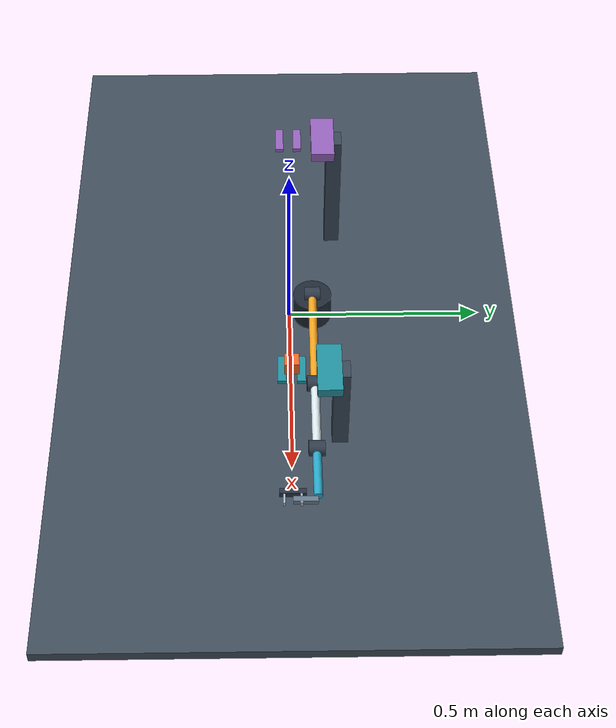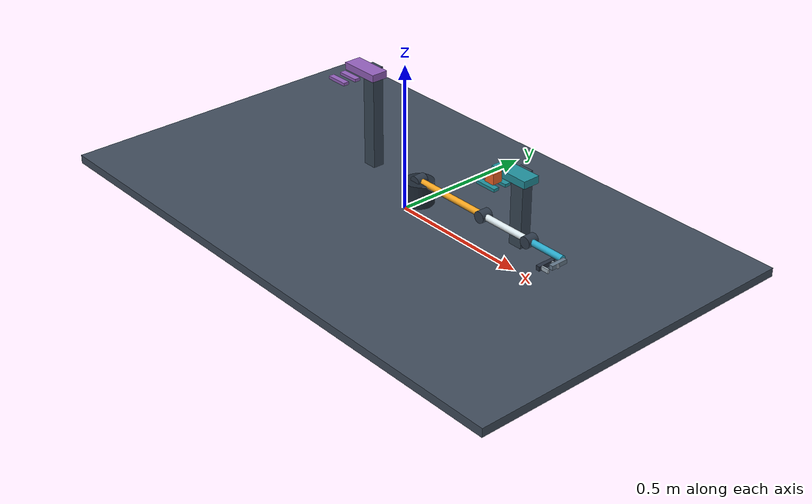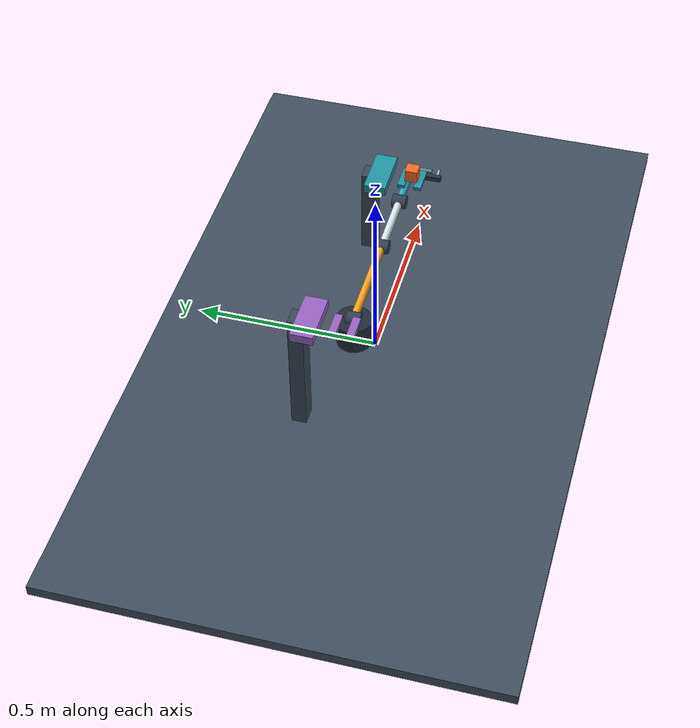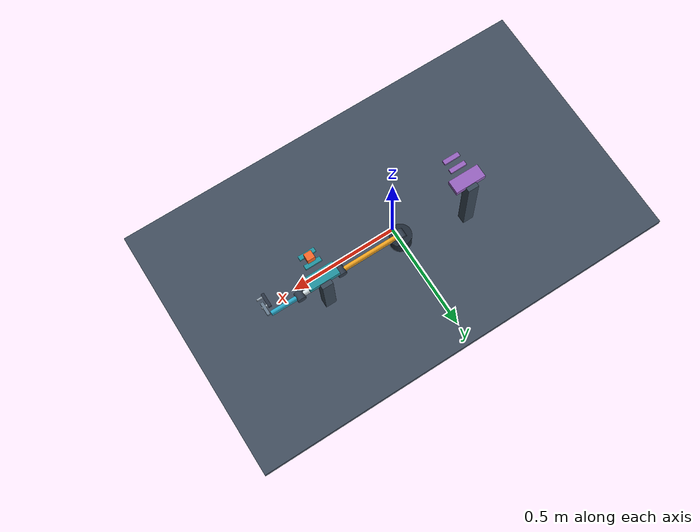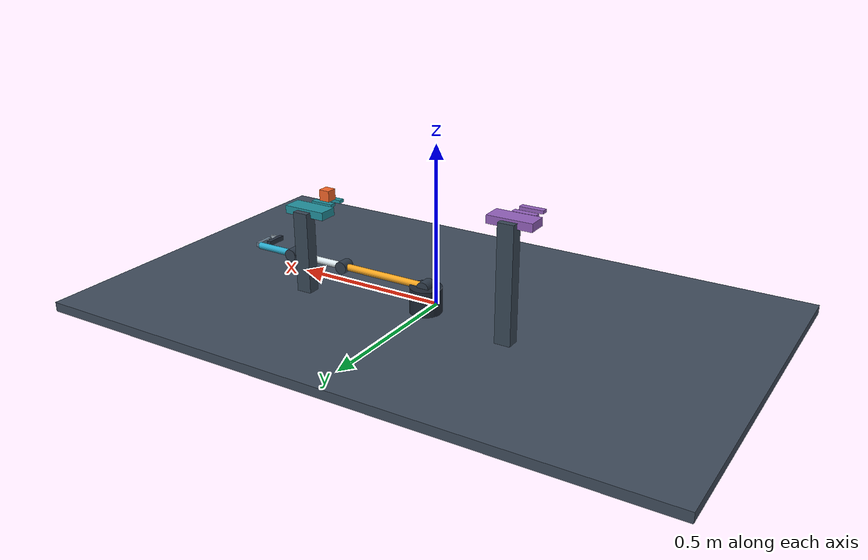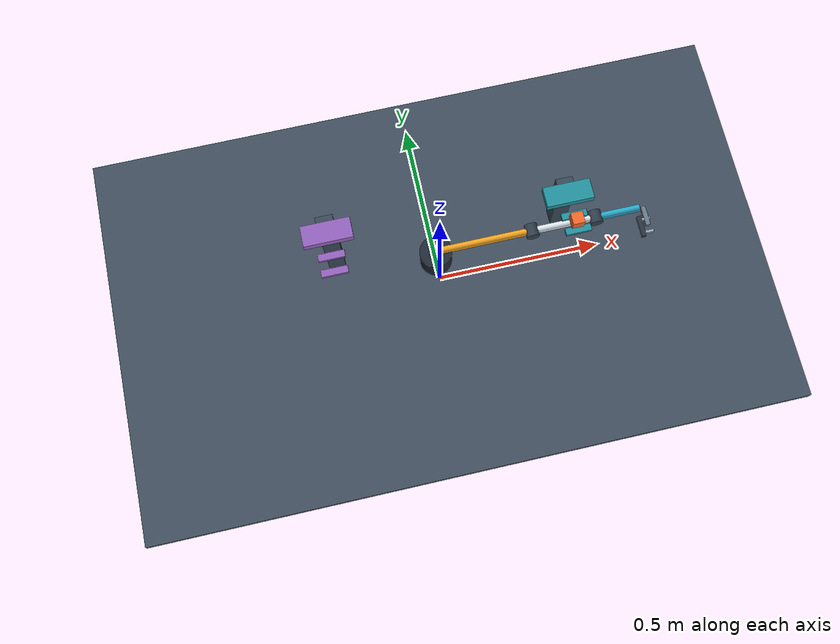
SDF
<?xml version="1.0"?>
<!-- Planar 3R arm: one brief length unit = 0.1 m; math (x,y) maps to world (0.1*x,0,0.08+0.1*y). Grasp uses an explicit detachable constraint. -->
<sdf version="1.9">
  <world name="workcell">
    <physics name="physics" type="ignored">
      <max_step_size>.001</max_step_size>
      <real_time_factor>1</real_time_factor>
    </physics>
    <gravity>0 0 -9.81</gravity>
    <plugin filename="gz-sim-physics-system" name="gz::sim::systems::Physics"/>
    <plugin filename="gz-sim-user-commands-system" name="gz::sim::systems::UserCommands"/>
    <plugin filename="gz-sim-scene-broadcaster-system" name="gz::sim::systems::SceneBroadcaster"/>
    <scene>
      <ambient>.5 .5 .5 1</ambient>
      <background>.10 .14 .20 1</background>
      <shadows>true</shadows>
    </scene>
    <light name="key" type="directional">
      <pose>0 0 3 0 0 0</pose>
      <direction>-.4 .4 -1</direction>
      <diffuse>.9 .9 .9 1</diffuse>
      <specular>.3 .3 .3 1</specular>
      <cast_shadows>true</cast_shadows>
    </light>
    <model name="floor">
      <static>true</static>
      <link name="floor">
        <visual name="floor">
          <pose>0 0 -.015 0 0 0</pose>
          <geometry>
            <box>
              <size>2.0 1.2 .03</size>
            </box>
          </geometry>
          <material>
            <ambient>0.25 0.30 0.36 1</ambient>
            <diffuse>0.25 0.30 0.36 1</diffuse>
            <specular>0.25 0.25 0.25 1</specular>
          </material>
        </visual>
        <collision name="floor_collision">
          <pose>0 0 -.015 0 0 0</pose>
          <geometry>
            <box>
              <size>2.0 1.2 .03</size>
            </box>
          </geometry>
        </collision>
      </link>
    </model>
    <model name="pick_station">
      <static>true</static>
      <link name="frame">
        <visual name="column">
          <pose>0.4 .12 0.13 0 0 0</pose>
          <geometry>
            <box>
              <size>.05 .04 0.26</size>
            </box>
          </geometry>
          <material>
            <ambient>0.22 0.28 0.34 1</ambient>
            <diffuse>0.22 0.28 0.34 1</diffuse>
            <specular>0.25 0.25 0.25 1</specular>
          </material>
        </visual>
        <visual name="backboard">
          <pose>0.4 .09 0.255 0 0 0</pose>
          <geometry>
            <box>
              <size>.14 .06 .025</size>
            </box>
          </geometry>
          <material>
            <ambient>0.13 0.57 0.62 1</ambient>
            <diffuse>0.13 0.57 0.62 1</diffuse>
            <specular>0.25 0.25 0.25 1</specular>
          </material>
        </visual>
        <visual name="rail-1">
          <pose>0.4 -0.023 0.2575 0 0 0</pose>
          <geometry>
            <box>
              <size>.075 .020 .01</size>
            </box>
          </geometry>
          <material>
            <ambient>0.13 0.57 0.62 1</ambient>
            <diffuse>0.13 0.57 0.62 1</diffuse>
            <specular>0.25 0.25 0.25 1</specular>
          </material>
        </visual>
        <collision name="support-1_collision">
          <pose>0.4 -0.023 0.2575 0 0 0</pose>
          <geometry>
            <box>
              <size>.075 .020 .01</size>
            </box>
          </geometry>
        </collision>
        <visual name="rail1">
          <pose>0.4 0.023 0.2575 0 0 0</pose>
          <geometry>
            <box>
              <size>.075 .020 .01</size>
            </box>
          </geometry>
          <material>
            <ambient>0.13 0.57 0.62 1</ambient>
            <diffuse>0.13 0.57 0.62 1</diffuse>
            <specular>0.25 0.25 0.25 1</specular>
          </material>
        </visual>
        <collision name="support1_collision">
          <pose>0.4 0.023 0.2575 0 0 0</pose>
          <geometry>
            <box>
              <size>.075 .020 .01</size>
            </box>
          </geometry>
        </collision>
      </link>
    </model>
    <model name="place_station">
      <static>true</static>
      <link name="frame">
        <visual name="column">
          <pose>-0.3 .12 0.18 0 0 0</pose>
          <geometry>
            <box>
              <size>.05 .04 0.36</size>
            </box>
          </geometry>
          <material>
            <ambient>0.22 0.28 0.34 1</ambient>
            <diffuse>0.22 0.28 0.34 1</diffuse>
            <specular>0.25 0.25 0.25 1</specular>
          </material>
        </visual>
        <visual name="backboard">
          <pose>-0.3 .09 0.355 0 0 0</pose>
          <geometry>
            <box>
              <size>.14 .06 .025</size>
            </box>
          </geometry>
          <material>
            <ambient>0.58 0.38 0.74 1</ambient>
            <diffuse>0.58 0.38 0.74 1</diffuse>
            <specular>0.25 0.25 0.25 1</specular>
          </material>
        </visual>
        <visual name="rail-1">
          <pose>-0.3 -0.023 0.3525 0 0 0</pose>
          <geometry>
            <box>
              <size>.075 .020 .01</size>
            </box>
          </geometry>
          <material>
            <ambient>0.58 0.38 0.74 1</ambient>
            <diffuse>0.58 0.38 0.74 1</diffuse>
            <specular>0.25 0.25 0.25 1</specular>
          </material>
        </visual>
        <collision name="support-1_collision">
          <pose>-0.3 -0.023 0.3525 0 0 0</pose>
          <geometry>
            <box>
              <size>.075 .020 .01</size>
            </box>
          </geometry>
        </collision>
        <visual name="rail1">
          <pose>-0.3 0.023 0.3525 0 0 0</pose>
          <geometry>
            <box>
              <size>.075 .020 .01</size>
            </box>
          </geometry>
          <material>
            <ambient>0.58 0.38 0.74 1</ambient>
            <diffuse>0.58 0.38 0.74 1</diffuse>
            <specular>0.25 0.25 0.25 1</specular>
          </material>
        </visual>
        <collision name="support1_collision">
          <pose>-0.3 0.023 0.3525 0 0 0</pose>
          <geometry>
            <box>
              <size>.075 .020 .01</size>
            </box>
          </geometry>
        </collision>
      </link>
    </model>
    <model name="payload">
      <pose>.4 0 .28 0 0 0</pose>
      <link name="body">
        <inertial>
          <mass>.03</mass>
          <inertia>
            <ixx>.000006125</ixx>
            <iyy>.000006125</iyy>
            <izz>.000006125</izz>
          </inertia>
        </inertial>
        <visual name="cube">
          <pose>0 0 0 0 0 0</pose>
          <geometry>
            <box>
              <size>.035 .035 .035</size>
            </box>
          </geometry>
          <material>
            <ambient>0.96 0.40 0.16 1</ambient>
            <diffuse>0.96 0.40 0.16 1</diffuse>
            <specular>0.25 0.25 0.25 1</specular>
          </material>
        </visual>
        <collision name="cube_collision">
          <pose>0 0 0 0 0 0</pose>
          <geometry>
            <box>
              <size>.035 .035 .035</size>
            </box>
          </geometry>
        </collision>
      </link>
      <plugin filename="gz-sim-pose-publisher-system" name="gz::sim::systems::PosePublisher">
        <publish_model_pose>true</publish_model_pose>
        <publish_link_pose>false</publish_link_pose>
        <use_pose_vector_msg>true</use_pose_vector_msg>
        <update_frequency>50</update_frequency>
      </plugin>
    </model>
    <model name="arm">
      <!-- A fixed lateral tool bracket reaches the payload plane, while the
           links run 6 cm behind it. All axes remain parallel; math X/Y and
           link lengths are unchanged. -->
      <pose>0 .06 0.08 0 0 0</pose>
      <self_collide>false</self_collide>
      <link name="base">
        <inertial>
          <mass>2</mass>
          <inertia>
            <ixx>.01</ixx>
            <iyy>.01</iyy>
            <izz>.01</izz>
          </inertia>
        </inertial>
        <visual name="pedestal">
          <pose>0 0 -0.04 0 0 0</pose>
          <geometry>
            <cylinder>
              <radius>0.05</radius>
              <length>0.08</length>
            </cylinder>
          </geometry>
          <material>
            <ambient>0.12 0.16 0.21 1</ambient>
            <diffuse>0.12 0.16 0.21 1</diffuse>
            <specular>0.25 0.25 0.25 1</specular>
          </material>
        </visual>
        <collision name="base_collision">
          <pose>0 0 -0.04 0 0 0</pose>
          <geometry>
            <cylinder>
              <radius>0.05</radius>
              <length>0.08</length>
            </cylinder>
          </geometry>
        </collision>
      </link>
      <joint name="fixed_base" type="fixed">
        <parent>world</parent>
        <child>base</child>
      </joint>
      <link name="link_1">
        <pose relative_to="base">0 0 0 0 0 0</pose>
        <inertial>
          <pose>0.15 0 0 0 0 0</pose>
          <mass>0.6</mass>
          <inertia>
            <ixx>0.00004</ixx>
            <iyy>0.00452</iyy>
            <izz>0.00452</izz>
          </inertia>
        </inertial>
        <visual name="beam">
          <pose>0.15 0 0 0 1.57079632679 0</pose>
          <geometry>
            <cylinder>
              <radius>0.011</radius>
              <length>0.27799999999999997</length>
            </cylinder>
          </geometry>
          <material>
            <ambient>0.95 0.64 0.12 1</ambient>
            <diffuse>0.95 0.64 0.12 1</diffuse>
            <specular>0.25 0.25 0.25 1</specular>
          </material>
        </visual>
        <visual name="hub">
          <pose>0 0 0 1.57079632679 0 0</pose>
          <geometry>
            <cylinder>
              <radius>0.02</radius>
              <length>0.04</length>
            </cylinder>
          </geometry>
          <material>
            <ambient>0.19 0.24 0.30 1</ambient>
            <diffuse>0.19 0.24 0.30 1</diffuse>
            <specular>0.25 0.25 0.25 1</specular>
          </material>
        </visual>
        <collision name="beam_collision">
          <pose>0.15 0 0 0 1.57079632679 0</pose>
          <geometry>
            <cylinder>
              <radius>0.008</radius>
              <length>0.27499999999999997</length>
            </cylinder>
          </geometry>
        </collision>
      </link>
      <joint name="joint_1" type="revolute">
        <parent>base</parent>
        <child>link_1</child>
        <axis>
          <xyz>0 -1 0</xyz>
          <limit>
            <lower>0</lower>
            <upper>3.141592653589793</upper>
            <effort>12</effort>
            <velocity>1.5</velocity>
          </limit>
          <dynamics>
            <damping>0.08</damping>
          </dynamics>
        </axis>
      </joint>
      <plugin filename="gz-sim-joint-position-controller-system" name="gz::sim::systems::JointPositionController">
        <joint_name>joint_1</joint_name>
        <topic>/arm/joint_1/command</topic>
        <p_gain>120</p_gain>
        <i_gain>100</i_gain>
        <d_gain>3</d_gain>
        <i_max>8</i_max>
        <i_min>-8</i_min>
        <cmd_max>12</cmd_max>
        <cmd_min>-12</cmd_min>
        <initial_position>0.5235987755982988</initial_position>
      </plugin>
      <link name="link_2">
        <pose relative_to="link_1">0.3 0 0 0 0 0</pose>
        <inertial>
          <pose>0.1 0 0 0 0 0</pose>
          <mass>0.4</mass>
          <inertia>
            <ixx>0.00002666666666666667</ixx>
            <iyy>0.001346666666666667</iyy>
            <izz>0.001346666666666667</izz>
          </inertia>
        </inertial>
        <visual name="beam">
          <pose>0.1 0 0 0 1.57079632679 0</pose>
          <geometry>
            <cylinder>
              <radius>0.011</radius>
              <length>0.17800000000000002</length>
            </cylinder>
          </geometry>
          <material>
            <ambient>0.86 0.91 0.93 1</ambient>
            <diffuse>0.86 0.91 0.93 1</diffuse>
            <specular>0.25 0.25 0.25 1</specular>
          </material>
        </visual>
        <visual name="hub">
          <pose>0 0 0 1.57079632679 0 0</pose>
          <geometry>
            <cylinder>
              <radius>0.02</radius>
              <length>0.04</length>
            </cylinder>
          </geometry>
          <material>
            <ambient>0.19 0.24 0.30 1</ambient>
            <diffuse>0.19 0.24 0.30 1</diffuse>
            <specular>0.25 0.25 0.25 1</specular>
          </material>
        </visual>
        <collision name="beam_collision">
          <pose>0.1 0 0 0 1.57079632679 0</pose>
          <geometry>
            <cylinder>
              <radius>0.008</radius>
              <length>0.17500000000000002</length>
            </cylinder>
          </geometry>
        </collision>
      </link>
      <joint name="joint_2" type="revolute">
        <parent>link_1</parent>
        <child>link_2</child>
        <axis>
          <xyz>0 -1 0</xyz>
          <limit>
            <lower>-2.09439510239</lower>
            <upper>2.09439510239</upper>
            <effort>12</effort>
            <velocity>1.5</velocity>
          </limit>
          <dynamics>
            <damping>0.08</damping>
          </dynamics>
        </axis>
      </joint>
      <plugin filename="gz-sim-joint-position-controller-system" name="gz::sim::systems::JointPositionController">
        <joint_name>joint_2</joint_name>
        <topic>/arm/joint_2/command</topic>
        <p_gain>50</p_gain>
        <i_gain>25</i_gain>
        <d_gain>.7</d_gain>
        <i_max>3</i_max>
        <i_min>-3</i_min>
        <cmd_max>12</cmd_max>
        <cmd_min>-12</cmd_min>
        <initial_position>-0.3490658503988659</initial_position>
      </plugin>
      <link name="link_3">
        <pose relative_to="link_2">0.2 0 0 0 0 0</pose>
        <inertial>
          <pose>0.075 0 0 0 0 0</pose>
          <mass>0.2</mass>
          <inertia>
            <ixx>0.000013333333333333335</ixx>
            <iyy>0.00038166666666666666</iyy>
            <izz>0.00038166666666666666</izz>
          </inertia>
        </inertial>
        <visual name="beam">
          <pose>0.075 0 0 0 1.57079632679 0</pose>
          <geometry>
            <cylinder>
              <radius>0.011</radius>
              <length>0.128</length>
            </cylinder>
          </geometry>
          <material>
            <ambient>0.16 0.66 0.79 1</ambient>
            <diffuse>0.16 0.66 0.79 1</diffuse>
            <specular>0.25 0.25 0.25 1</specular>
          </material>
        </visual>
        <visual name="hub">
          <pose>0 0 0 1.57079632679 0 0</pose>
          <geometry>
            <cylinder>
              <radius>0.02</radius>
              <length>0.04</length>
            </cylinder>
          </geometry>
          <material>
            <ambient>0.19 0.24 0.30 1</ambient>
            <diffuse>0.19 0.24 0.30 1</diffuse>
            <specular>0.25 0.25 0.25 1</specular>
          </material>
        </visual>
        <collision name="beam_collision">
          <pose>0.075 0 0 0 1.57079632679 0</pose>
          <geometry>
            <cylinder>
              <radius>0.008</radius>
              <length>0.125</length>
            </cylinder>
          </geometry>
        </collision>
      </link>
      <joint name="joint_3" type="revolute">
        <parent>link_2</parent>
        <child>link_3</child>
        <axis>
          <xyz>0 -1 0</xyz>
          <limit>
            <lower>-2.09439510239</lower>
            <upper>2.09439510239</upper>
            <effort>12</effort>
            <velocity>1.5</velocity>
          </limit>
          <dynamics>
            <damping>0.08</damping>
          </dynamics>
        </axis>
      </joint>
      <plugin filename="gz-sim-joint-position-controller-system" name="gz::sim::systems::JointPositionController">
        <joint_name>joint_3</joint_name>
        <topic>/arm/joint_3/command</topic>
        <p_gain>12</p_gain>
        <i_gain>5</i_gain>
        <d_gain>.1</d_gain>
        <i_max>3</i_max>
        <i_min>-3</i_min>
        <cmd_max>12</cmd_max>
        <cmd_min>-12</cmd_min>
        <initial_position>-0.17453292519943295</initial_position>
      </plugin>
      <link name="tool">
        <pose relative_to="link_3">.15 -.06 0 0 0 0</pose>
        <inertial>
          <pose>0.0005 0 0 0 0 0</pose>
          <mass>0.02</mass>
          <inertia>
            <ixx>0.0000013333333333333336</ixx>
            <iyy>6.683333333333334e-7</iyy>
            <izz>6.683333333333334e-7</izz>
          </inertia>
        </inertial>
        <visual name="lateral_bracket">
          <pose>0 .03 0 0 0 0</pose>
          <geometry><box><size>.014 .06 .014</size></box></geometry>
          <material><ambient>.4 .48 .55 1</ambient><diffuse>.4 .48 .55 1</diffuse></material>
        </visual>
        <visual name="palm">
          <pose>-.022 0 0 0 0 0</pose>
          <geometry>
            <box>
              <size>.014 .065 .015</size>
            </box>
          </geometry>
          <material>
            <ambient>0.16 0.20 0.26 1</ambient>
            <diffuse>0.16 0.20 0.26 1</diffuse>
            <specular>0.25 0.25 0.25 1</specular>
          </material>
        </visual>
      </link>
      <joint name="tool_mount" type="fixed">
        <parent>link_3</parent>
        <child>tool</child>
      </joint>
      <link name="finger_left">
        <pose relative_to="tool">0 0.0205 0 0 0 0</pose>
        <inertial>
          <pose>0.0005 0 0 0 0 0</pose>
          <mass>0.005</mass>
          <inertia>
            <ixx>3.333333333333334e-7</ixx>
            <iyy>1.6708333333333336e-7</iyy>
            <izz>1.6708333333333336e-7</izz>
          </inertia>
        </inertial>
        <visual name="finger">
          <pose>-.006 0 0 0 0 0</pose>
          <geometry>
            <box>
              <size>.035 .006 .013</size>
            </box>
          </geometry>
          <material>
            <ambient>0.65 0.71 0.76 1</ambient>
            <diffuse>0.65 0.71 0.76 1</diffuse>
            <specular>0.25 0.25 0.25 1</specular>
          </material>
        </visual>
      </link>
      <joint name="gripper_left" type="prismatic">
        <parent>tool</parent>
        <child>finger_left</child>
        <axis>
          <xyz>0 1 0</xyz>
          <limit>
            <lower>0</lower>
            <upper>.013</upper>
            <effort>3</effort>
          </limit>
          <dynamics>
            <damping>.1</damping>
          </dynamics>
        </axis>
      </joint>
      <plugin filename="gz-sim-joint-position-controller-system" name="gz::sim::systems::JointPositionController">
        <joint_name>gripper_left</joint_name>
        <topic>/arm/gripper/command</topic>
        <use_velocity_commands>true</use_velocity_commands>
        <cmd_max>.1</cmd_max>
        <initial_position>.013</initial_position>
      </plugin>
      <link name="finger_right">
        <pose relative_to="tool">0 -0.0205 0 0 0 0</pose>
        <inertial>
          <pose>0.0005 0 0 0 0 0</pose>
          <mass>0.005</mass>
          <inertia>
            <ixx>3.333333333333334e-7</ixx>
            <iyy>1.6708333333333336e-7</iyy>
            <izz>1.6708333333333336e-7</izz>
          </inertia>
        </inertial>
        <visual name="finger">
          <pose>-.006 0 0 0 0 0</pose>
          <geometry>
            <box>
              <size>.035 .006 .013</size>
            </box>
          </geometry>
          <material>
            <ambient>0.65 0.71 0.76 1</ambient>
            <diffuse>0.65 0.71 0.76 1</diffuse>
            <specular>0.25 0.25 0.25 1</specular>
          </material>
        </visual>
      </link>
      <joint name="gripper_right" type="prismatic">
        <parent>tool</parent>
        <child>finger_right</child>
        <axis>
          <xyz>0 -1 0</xyz>
          <limit>
            <lower>0</lower>
            <upper>.013</upper>
            <effort>3</effort>
          </limit>
          <dynamics>
            <damping>.1</damping>
          </dynamics>
        </axis>
      </joint>
      <plugin filename="gz-sim-joint-position-controller-system" name="gz::sim::systems::JointPositionController">
        <joint_name>gripper_right</joint_name>
        <topic>/arm/gripper/command</topic>
        <use_velocity_commands>true</use_velocity_commands>
        <cmd_max>.1</cmd_max>
        <initial_position>.013</initial_position>
      </plugin>
      <plugin filename="gz-sim-joint-state-publisher-system" name="gz::sim::systems::JointStatePublisher">
        <topic>/arm/measured_joints</topic>
        <update_rate>100</update_rate>
      </plugin>
      <plugin filename="gz-sim-detachable-joint-system" name="gz::sim::systems::DetachableJoint">
        <parent_link>tool</parent_link>
        <child_model>payload</child_model>
        <child_link>body</child_link>
        <attach_topic>/arm/grasp/attach</attach_topic>
        <detach_topic>/arm/grasp/detach</detach_topic>
        <output_topic>/arm/grasp/state</output_topic>
      </plugin>
    </model>
    <gui fullscreen="false">
      <plugin filename="MinimalScene" name="3D View">
        <gz-gui>
          <title>Workcell</title>
          <property type="bool" key="showTitleBar">false</property>
          <property type="string" key="state">docked</property>
        </gz-gui>
        <engine>ogre2</engine>
        <scene>scene</scene>
        <ambient_light>.5 .5 .5</ambient_light>
        <background_color>.10 .14 .20</background_color>
        <camera_pose>1.0 -1.6 1.1 0 .42 2.1</camera_pose>
      </plugin>
      <plugin filename="GzSceneManager" name="Scene Manager"/>
      <plugin filename="InteractiveViewControl" name="View control"/>
      <plugin filename="WorldControl" name="World control"/>
    </gui>
  </world>
</sdf>
